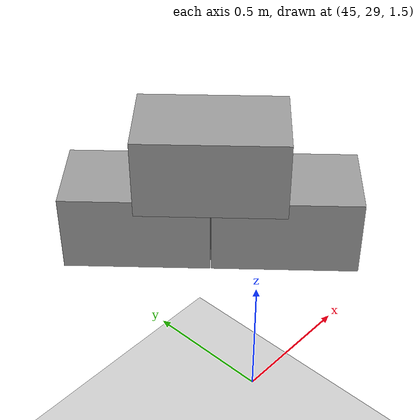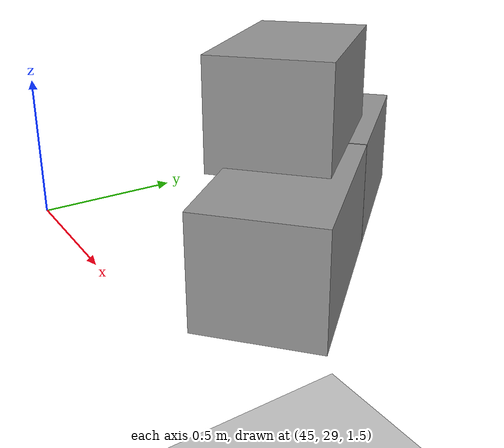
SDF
<sdf version="1.7">
 <world name="default">
  <model name="ground_plane">
   <static>1</static>
   <link name="link">
    <collision name="collision">
     <geometry><plane><normal>0 0 1</normal><size>100 100</size></plane></geometry>
     <surface>
      <contact><collide_bitmask>65535</collide_bitmask></contact>
      <friction><ode><mu>100</mu><mu2>50</mu2></ode></friction>
     </surface>
    </collision>
    <visual name="visual">
     <cast_shadows>0</cast_shadows>
     <geometry><plane><normal>0 0 1</normal><size>100 100</size></plane></geometry>
     <material>
      <script><uri>file://media/materials/scripts/gazebo.material</uri><name>Gazebo/Grey</name></script>
     </material>
    </visual>
   </link>
  </model>
  <model name="Add_Box_clone_clone_3_clone_9">
   <link name="link">
    <inertial>
     <mass>1</mass>
     <inertia>
      <ixx>0.166667</ixx>
      <ixy>0</ixy>
      <ixz>0</ixz>
      <iyy>0.166667</iyy>
      <iyz>0</iyz>
      <izz>0.166667</izz>
     </inertia>
    </inertial>
    <kinematic>1</kinematic>
    <gravity>0</gravity>
    <visual name="visual">
     <geometry><box><size>0.686 0.406 0.381</size></box></geometry>
     <material>
      <script><name>Gazebo/Grey</name><uri>file://media/materials/scripts/gazebo.material</uri></script>
      <shader type="pixel"><normal_map>__default__</normal_map></shader>
      <ambient>0.3 0.3 0.3 1</ambient>
      <diffuse>0.7 0.7 0.7 1</diffuse>
      <specular>0.01 0.01 0.01 1</specular>
      <emissive>0 0 0 1</emissive>
     </material>
    </visual>
    <collision name="collision">
     <geometry><box><size>1 1 1</size></box></geometry>
     <surface>
      <friction>
       <ode><mu>1</mu><mu2>1</mu2><fdir1>0 0 0</fdir1><slip1>0</slip1><slip2>0</slip2></ode>
       <torsional>
        <coefficient>1</coefficient>
        <patch_radius>0</patch_radius>
        <surface_radius>0</surface_radius>
        <use_patch_radius>1</use_patch_radius>
        <ode><slip>0</slip></ode>
       </torsional>
      </friction>
      <bounce><restitution_coefficient>0</restitution_coefficient><threshold>1e+06</threshold></bounce>
      <contact>
       <collide_without_contact>0</collide_without_contact>
       <collide_without_contact_bitmask>1</collide_without_contact_bitmask>
       <collide_bitmask>1</collide_bitmask>
       <ode>
        <soft_cfm>0</soft_cfm>
        <soft_erp>0.2</soft_erp>
        <kp>1e+13</kp>
        <kd>1</kd>
        <max_vel>0.01</max_vel>
        <min_depth>0</min_depth>
       </ode>
       <bullet>
        <split_impulse>1</split_impulse>
        <split_impulse_penetration_threshold>-0.01</split_impulse_penetration_threshold>
        <soft_cfm>0</soft_cfm>
        <soft_erp>0.2</soft_erp>
        <kp>1e+13</kp>
        <kd>1</kd>
       </bullet>
      </contact>
     </surface>
    </collision>
   </link>
   <link name="link_clone">
    <inertial>
     <mass>1</mass>
     <inertia>
      <ixx>0.166667</ixx>
      <ixy>0</ixy>
      <ixz>0</ixz>
      <iyy>0.166667</iyy>
      <iyz>0</iyz>
      <izz>0.166667</izz>
     </inertia>
    </inertial>
    <pose>-0.343354 -0.063316 0.354303 1e-05 -0 0</pose>
    <gravity>0</gravity>
    <visual name="visual">
     <geometry><box><size>0.686 0.406 0.381</size></box></geometry>
     <material>
      <script><name>Gazebo/Grey</name><uri>file://media/materials/scripts/gazebo.material</uri></script>
      <shader type="pixel"><normal_map>__default__</normal_map></shader>
      <ambient>0.3 0.3 0.3 1</ambient>
      <diffuse>0.7 0.7 0.7 1</diffuse>
      <specular>0.01 0.01 0.01 1</specular>
      <emissive>0 0 0 1</emissive>
     </material>
    </visual>
    <collision name="collision">
     <geometry><box><size>1 1 1</size></box></geometry>
     <surface>
      <friction>
       <ode><mu>1</mu><mu2>1</mu2><fdir1>0 0 0</fdir1><slip1>0</slip1><slip2>0</slip2></ode>
       <torsional>
        <coefficient>1</coefficient>
        <patch_radius>0</patch_radius>
        <surface_radius>0</surface_radius>
        <use_patch_radius>1</use_patch_radius>
        <ode><slip>0</slip></ode>
       </torsional>
      </friction>
      <bounce><restitution_coefficient>0</restitution_coefficient><threshold>1e+06</threshold></bounce>
      <contact>
       <collide_without_contact>0</collide_without_contact>
       <collide_without_contact_bitmask>1</collide_without_contact_bitmask>
       <collide_bitmask>1</collide_bitmask>
       <ode>
        <soft_cfm>0</soft_cfm>
        <soft_erp>0.2</soft_erp>
        <kp>1e+13</kp>
        <kd>1</kd>
        <max_vel>0.01</max_vel>
        <min_depth>0</min_depth>
       </ode>
       <bullet>
        <split_impulse>1</split_impulse>
        <split_impulse_penetration_threshold>-0.01</split_impulse_penetration_threshold>
        <soft_cfm>0</soft_cfm>
        <soft_erp>0.2</soft_erp>
        <kp>1e+13</kp>
        <kd>1</kd>
       </bullet>
      </contact>
     </surface>
    </collision>
   </link>
   <link name="link_clone_clone">
    <inertial>
     <mass>1</mass>
     <inertia>
      <ixx>0.166667</ixx>
      <ixy>0</ixy>
      <ixz>0</ixz>
      <iyy>0.166667</iyy>
      <iyz>0</iyz>
      <izz>0.166667</izz>
     </inertia>
    </inertial>
    <pose>-0.690786 -0.000183 -1e-05 2e-05 -0 0</pose>
    <gravity>0</gravity>
    <visual name="visual">
     <geometry><box><size>0.686 0.406 0.381</size></box></geometry>
     <material>
      <script><name>Gazebo/Grey</name><uri>file://media/materials/scripts/gazebo.material</uri></script>
      <shader type="pixel"><normal_map>__default__</normal_map></shader>
      <ambient>0.3 0.3 0.3 1</ambient>
      <diffuse>0.7 0.7 0.7 1</diffuse>
      <specular>0.01 0.01 0.01 1</specular>
      <emissive>0 0 0 1</emissive>
     </material>
    </visual>
    <collision name="collision">
     <geometry><box><size>1 1 1</size></box></geometry>
     <surface>
      <friction>
       <ode><mu>1</mu><mu2>1</mu2><fdir1>0 0 0</fdir1><slip1>0</slip1><slip2>0</slip2></ode>
       <torsional>
        <coefficient>1</coefficient>
        <patch_radius>0</patch_radius>
        <surface_radius>0</surface_radius>
        <use_patch_radius>1</use_patch_radius>
        <ode><slip>0</slip></ode>
       </torsional>
      </friction>
      <bounce><restitution_coefficient>0</restitution_coefficient><threshold>1e+06</threshold></bounce>
      <contact>
       <collide_without_contact>0</collide_without_contact>
       <collide_without_contact_bitmask>1</collide_without_contact_bitmask>
       <collide_bitmask>1</collide_bitmask>
       <ode>
        <soft_cfm>0</soft_cfm>
        <soft_erp>0.2</soft_erp>
        <kp>1e+13</kp>
        <kd>1</kd>
        <max_vel>0.01</max_vel>
        <min_depth>0</min_depth>
       </ode>
       <bullet>
        <split_impulse>1</split_impulse>
        <split_impulse_penetration_threshold>-0.01</split_impulse_penetration_threshold>
        <soft_cfm>0</soft_cfm>
        <soft_erp>0.2</soft_erp>
        <kp>1e+13</kp>
        <kd>1</kd>
       </bullet>
      </contact>
     </surface>
    </collision>
   </link>
   <static>0</static>
   <pose>45.8252 29.5085 1.61518 0 0 -0.858208</pose>
  </model>
 </world>
</sdf>
